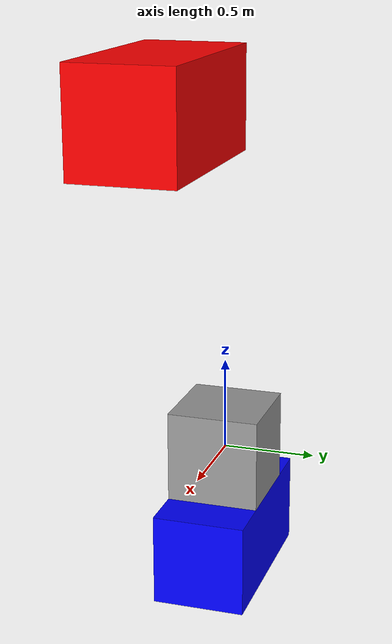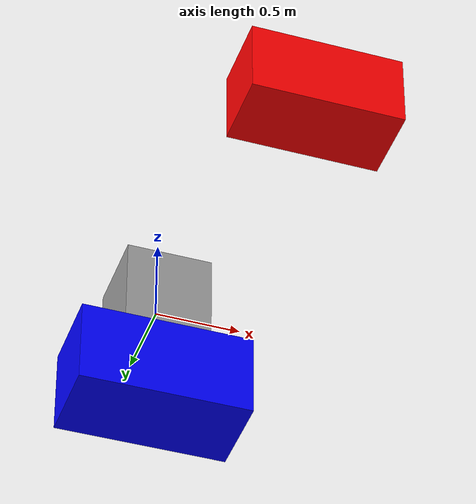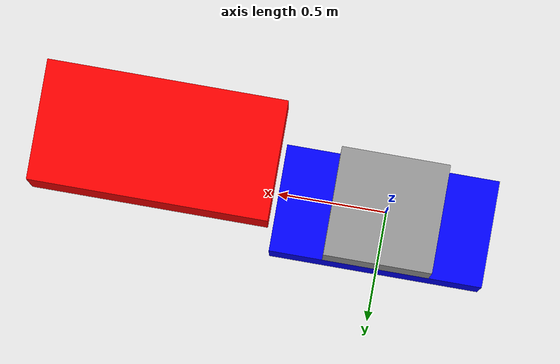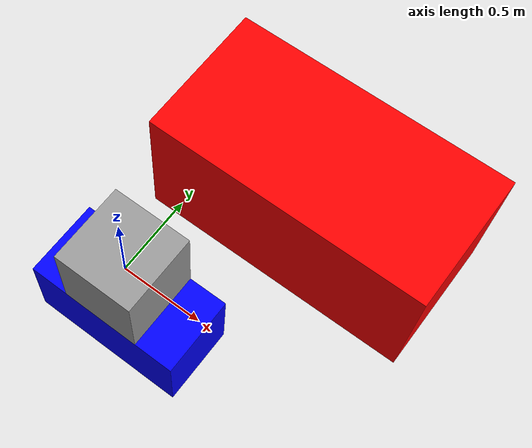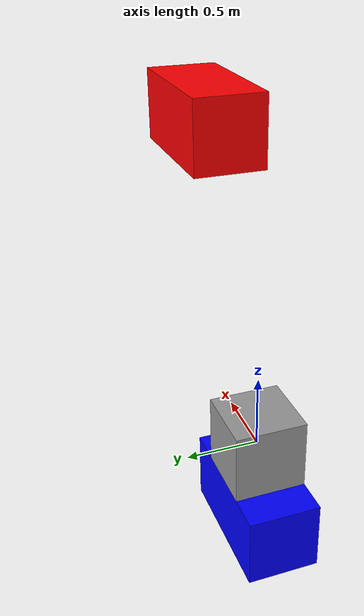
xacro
<?xml version="1.0" ?>
<robot name="simple_robot" xmlns:xacro = "http://www.ros.org/wiki/xacro">

    <xacro:property name = "base_width" value = "1.0" />
    <xacro:property name = "base_length" value = "0.5" />
    <xacro:property name = "base_height" value = "0.5" />

    <link name="base_link">
        <visual>
            <geometry>
                <box size="0.5 0.5 0.5"/>
            </geometry>
            <origin xyz="0 0 0" rpy="0 0 0"/>
            <material name="grey" />
        </visual>
    </link>

    <xacro:macro name = "arm_link" params = "prefix color">
        <link name="${prefix}_arm_link">
            <visual>
                <geometry>
                    <box size="${base_width} ${base_length} ${base_height}"/>
                </geometry>
                <origin xyz="0 0 1.0" rpy="0 0 0"/>
                <material name="${color}">
                    <color rgba="${color}"/>
                </material>
            </visual>
        </link>
    </xacro:macro>

    <xacro:arm_link prefix="right" color="1 0 0 1"/>
    <xacro:arm_link prefix="left" color="0 0 1 1"/>

    <joint name = "base_right_joint" type = "fixed" >
        <parent link = "base_link" />
        <child link = "right_arm_link" />
        <origin xyz = "1 0 1.0" rpy = "0 0 0 " />
    </joint>

    <joint name = "base_left_joint" type = "fixed" >
        <parent link = "base_link" />
        <child link = "left_arm_link" />
        <origin xyz = "0 0 -1.5" rpy = "0 0 0 " />
    </joint>
</robot>
